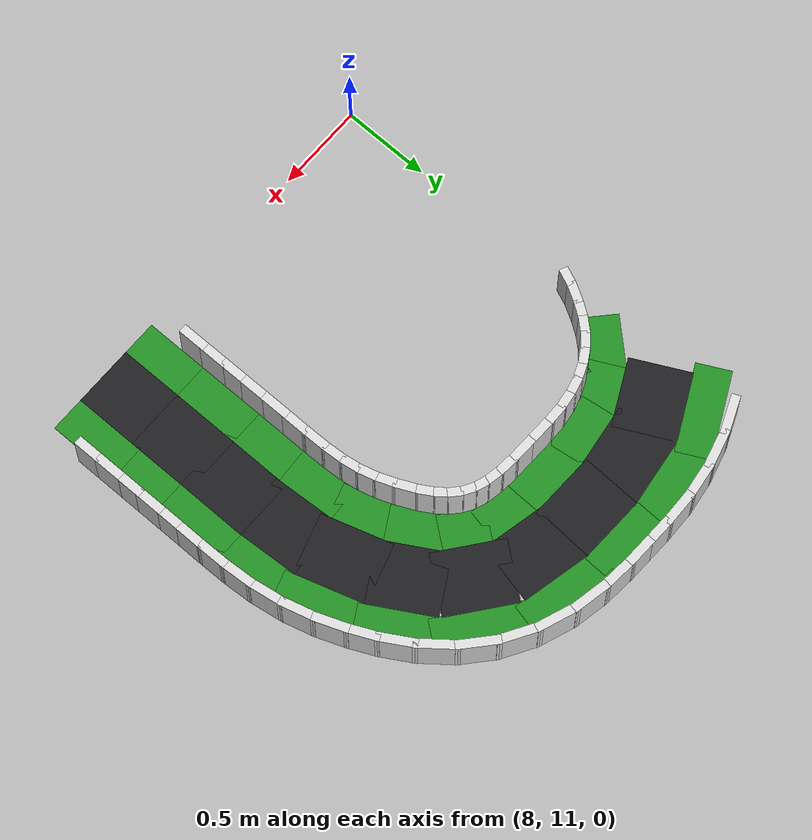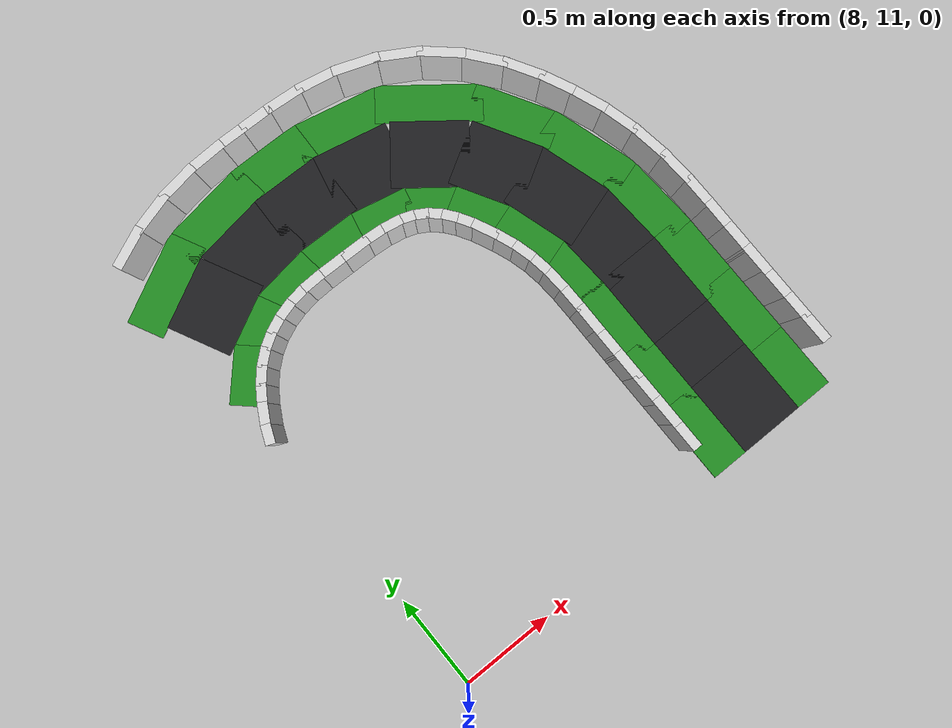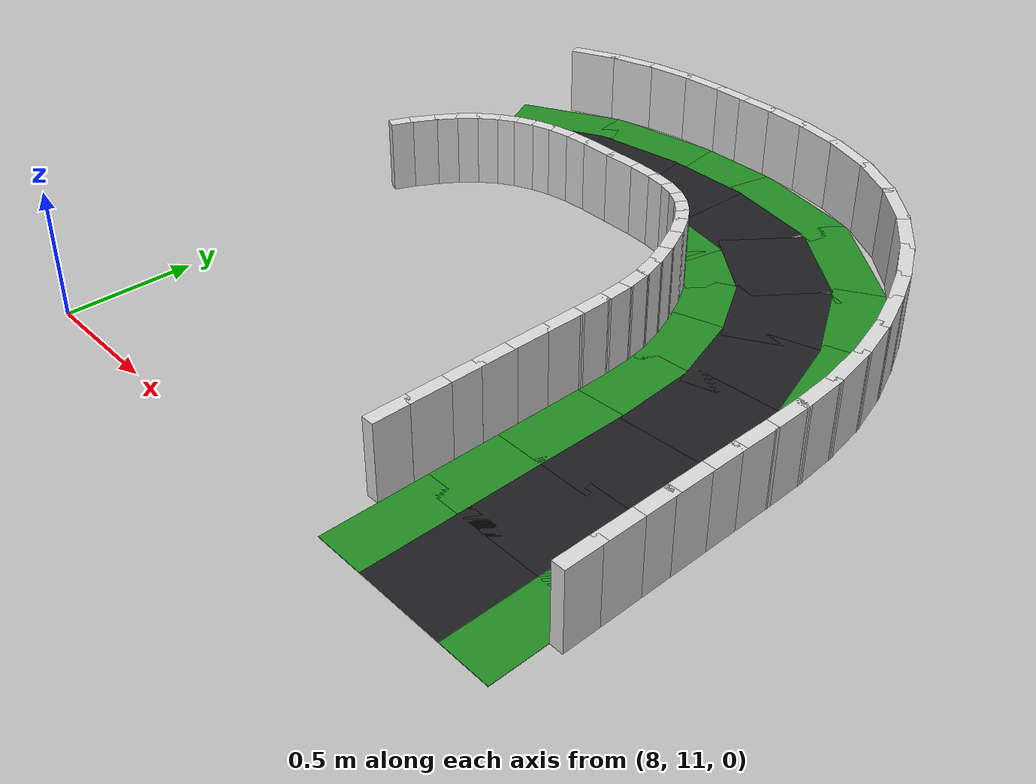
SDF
<sdf version="1.8">
 <world name="it_arena_track">
  <model name="it_arena_track_static">
   <static>true</static>
   <link name="surface_main_13">
    <pose>9.9514 11.2060 0.0015 0 0 1.57385</pose>
    <collision name="surface_main_13_col">
     <geometry><box><size>0.4140 0.3500 0.0030</size></box></geometry>
    </collision>
    <visual name="surface_main_13_vis">
     <geometry><box><size>0.4140 0.3500 0.0030</size></box></geometry>
     <material><ambient>0.12 0.12 0.13 1</ambient><diffuse>0.12 0.12 0.13 1</diffuse></material>
    </visual>
   </link>
   <link name="surface_main_14">
    <pose>9.9503 11.5559 0.0015 0 0 1.57397</pose>
    <collision name="surface_main_14_col">
     <geometry><box><size>0.3910 0.3500 0.0030</size></box></geometry>
    </collision>
    <visual name="surface_main_14_vis">
     <geometry><box><size>0.3910 0.3500 0.0030</size></box></geometry>
     <material><ambient>0.12 0.12 0.13 1</ambient><diffuse>0.12 0.12 0.13 1</diffuse></material>
    </visual>
   </link>
   <link name="surface_main_15">
    <pose>9.9498 11.9059 0.0015 0 0 1.57068</pose>
    <collision name="surface_main_15_col">
     <geometry><box><size>0.4140 0.3500 0.0030</size></box></geometry>
    </collision>
    <visual name="surface_main_15_vis">
     <geometry><box><size>0.4140 0.3500 0.0030</size></box></geometry>
     <material><ambient>0.12 0.12 0.13 1</ambient><diffuse>0.12 0.12 0.13 1</diffuse></material>
    </visual>
   </link>
   <link name="surface_main_16">
    <pose>9.9389 12.2553 0.0015 0 0 1.63489</pose>
    <collision name="surface_main_16_col">
     <geometry><box><size>0.3905 0.3500 0.0030</size></box></geometry>
    </collision>
    <visual name="surface_main_16_vis">
     <geometry><box><size>0.3905 0.3500 0.0030</size></box></geometry>
     <material><ambient>0.12 0.12 0.13 1</ambient><diffuse>0.12 0.12 0.13 1</diffuse></material>
    </visual>
   </link>
   <link name="surface_main_17">
    <pose>9.8749 12.5961 0.0015 0 0 1.87171</pose>
    <collision name="surface_main_17_col">
     <geometry><box><size>0.4127 0.3500 0.0030</size></box></geometry>
    </collision>
    <visual name="surface_main_17_vis">
     <geometry><box><size>0.4127 0.3500 0.0030</size></box></geometry>
     <material><ambient>0.12 0.12 0.13 1</ambient><diffuse>0.12 0.12 0.13 1</diffuse></material>
    </visual>
   </link>
   <link name="surface_main_18">
    <pose>9.7365 12.9139 0.0015 0 0 2.09781</pose>
    <collision name="surface_main_18_col">
     <geometry><box><size>0.3897 0.3500 0.0030</size></box></geometry>
    </collision>
    <visual name="surface_main_18_vis">
     <geometry><box><size>0.3897 0.3500 0.0030</size></box></geometry>
     <material><ambient>0.12 0.12 0.13 1</ambient><diffuse>0.12 0.12 0.13 1</diffuse></material>
    </visual>
   </link>
   <link name="surface_main_19">
    <pose>9.5103 13.1694 0.0015 0 0 2.48299</pose>
    <collision name="surface_main_19_col">
     <geometry><box><size>0.4099 0.3500 0.0030</size></box></geometry>
    </collision>
    <visual name="surface_main_19_vis">
     <geometry><box><size>0.4099 0.3500 0.0030</size></box></geometry>
     <material><ambient>0.12 0.12 0.13 1</ambient><diffuse>0.12 0.12 0.13 1</diffuse></material>
    </visual>
   </link>
   <link name="surface_main_20">
    <pose>9.1946 13.3170 0.0015 0 0 2.92453</pose>
    <collision name="surface_main_20_col">
     <geometry><box><size>0.4117 0.3500 0.0030</size></box></geometry>
    </collision>
    <visual name="surface_main_20_vis">
     <geometry><box><size>0.4117 0.3500 0.0030</size></box></geometry>
     <material><ambient>0.12 0.12 0.13 1</ambient><diffuse>0.12 0.12 0.13 1</diffuse></material>
    </visual>
   </link>
   <link name="surface_main_21">
    <pose>8.8499 13.3599 0.0015 0 0 3.11616</pose>
    <collision name="surface_main_21_col">
     <geometry><box><size>0.3909 0.3500 0.0030</size></box></geometry>
    </collision>
    <visual name="surface_main_21_vis">
     <geometry><box><size>0.3909 0.3500 0.0030</size></box></geometry>
     <material><ambient>0.12 0.12 0.13 1</ambient><diffuse>0.12 0.12 0.13 1</diffuse></material>
    </visual>
   </link>
   <link name="surface_main_22">
    <pose>8.5024 13.3397 0.0015 0 0 -3.00425</pose>
    <collision name="surface_main_22_col">
     <geometry><box><size>0.4123 0.3500 0.0030</size></box></geometry>
    </collision>
    <visual name="surface_main_22_vis">
     <geometry><box><size>0.4123 0.3500 0.0030</size></box></geometry>
     <material><ambient>0.12 0.12 0.13 1</ambient><diffuse>0.12 0.12 0.13 1</diffuse></material>
    </visual>
   </link>
   <link name="surface_main_23">
    <pose>8.1741 13.2386 0.0015 0 0 -2.67193</pose>
    <collision name="surface_main_23_col">
     <geometry><box><size>0.3889 0.3500 0.0030</size></box></geometry>
    </collision>
    <visual name="surface_main_23_vis">
     <geometry><box><size>0.3889 0.3500 0.0030</size></box></geometry>
     <material><ambient>0.12 0.12 0.13 1</ambient><diffuse>0.12 0.12 0.13 1</diffuse></material>
    </visual>
   </link>
   <link name="grass_main_left_13">
    <pose>9.6764 11.2052 0.0010 0 0 1.57385</pose>
    <collision name="grass_main_left_13_col">
     <geometry><box><size>0.4144 0.2000 0.0020</size></box></geometry>
    </collision>
    <visual name="grass_main_left_13_vis">
     <geometry><box><size>0.4144 0.2000 0.0020</size></box></geometry>
     <material><ambient>0.13 0.55 0.13 1</ambient><diffuse>0.13 0.55 0.13 1</diffuse></material>
    </visual>
   </link>
   <link name="grass_main_left_14">
    <pose>9.6753 11.5553 0.0010 0 0 1.57397</pose>
    <collision name="grass_main_left_14_col">
     <geometry><box><size>0.3908 0.2000 0.0020</size></box></geometry>
    </collision>
    <visual name="grass_main_left_14_vis">
     <geometry><box><size>0.3908 0.2000 0.0020</size></box></geometry>
     <material><ambient>0.13 0.55 0.13 1</ambient><diffuse>0.13 0.55 0.13 1</diffuse></material>
    </visual>
   </link>
   <link name="grass_main_left_15">
    <pose>9.6748 11.9050 0.0010 0 0 1.57068</pose>
    <collision name="grass_main_left_15_col">
     <geometry><box><size>0.4135 0.2000 0.0020</size></box></geometry>
    </collision>
    <visual name="grass_main_left_15_vis">
     <geometry><box><size>0.4135 0.2000 0.0020</size></box></geometry>
     <material><ambient>0.13 0.55 0.13 1</ambient><diffuse>0.13 0.55 0.13 1</diffuse></material>
    </visual>
   </link>
   <link name="grass_main_left_16">
    <pose>9.6658 12.2322 0.0010 0 0 1.63184</pose>
    <collision name="grass_main_left_16_col">
     <geometry><box><size>0.3396 0.2000 0.0020</size></box></geometry>
    </collision>
    <visual name="grass_main_left_16_vis">
     <geometry><box><size>0.3396 0.2000 0.0020</size></box></geometry>
     <material><ambient>0.13 0.55 0.13 1</ambient><diffuse>0.13 0.55 0.13 1</diffuse></material>
    </visual>
   </link>
   <link name="grass_main_left_17">
    <pose>9.6141 12.5166 0.0010 0 0 1.87299</pose>
    <collision name="grass_main_left_17_col">
     <geometry><box><size>0.3303 0.2000 0.0020</size></box></geometry>
    </collision>
    <visual name="grass_main_left_17_vis">
     <geometry><box><size>0.3303 0.2000 0.0020</size></box></geometry>
     <material><ambient>0.13 0.55 0.13 1</ambient><diffuse>0.13 0.55 0.13 1</diffuse></material>
    </visual>
   </link>
   <link name="grass_main_left_18">
    <pose>9.5041 12.7710 0.0010 0 0 2.09164</pose>
    <collision name="grass_main_left_18_col">
     <geometry><box><size>0.3109 0.2000 0.0020</size></box></geometry>
    </collision>
    <visual name="grass_main_left_18_vis">
     <geometry><box><size>0.3109 0.2000 0.0020</size></box></geometry>
     <material><ambient>0.13 0.55 0.13 1</ambient><diffuse>0.13 0.55 0.13 1</diffuse></material>
    </visual>
   </link>
   <link name="grass_main_left_19">
    <pose>9.3474 12.9577 0.0010 0 0 2.48149</pose>
    <collision name="grass_main_left_19_col">
     <geometry><box><size>0.2604 0.2000 0.0020</size></box></geometry>
    </collision>
    <visual name="grass_main_left_19_vis">
     <geometry><box><size>0.2604 0.2000 0.0020</size></box></geometry>
     <material><ambient>0.13 0.55 0.13 1</ambient><diffuse>0.13 0.55 0.13 1</diffuse></material>
    </visual>
   </link>
   <link name="grass_main_left_20">
    <pose>9.1301 13.0541 0.0010 0 0 2.93327</pose>
    <collision name="grass_main_left_20_col">
     <geometry><box><size>0.3006 0.2000 0.0020</size></box></geometry>
    </collision>
    <visual name="grass_main_left_20_vis">
     <geometry><box><size>0.3006 0.2000 0.0020</size></box></geometry>
     <material><ambient>0.13 0.55 0.13 1</ambient><diffuse>0.13 0.55 0.13 1</diffuse></material>
    </visual>
   </link>
   <link name="grass_main_left_21">
    <pose>8.8402 13.0852 0.0010 0 0 3.11664</pose>
    <collision name="grass_main_left_21_col">
     <geometry><box><size>0.3727 0.2000 0.0020</size></box></geometry>
    </collision>
    <visual name="grass_main_left_21_vis">
     <geometry><box><size>0.3727 0.2000 0.0020</size></box></geometry>
     <material><ambient>0.13 0.55 0.13 1</ambient><diffuse>0.13 0.55 0.13 1</diffuse></material>
    </visual>
   </link>
   <link name="grass_main_left_22">
    <pose>8.5419 13.0707 0.0010 0 0 -3.00677</pose>
    <collision name="grass_main_left_22_col">
     <geometry><box><size>0.3164 0.2000 0.0020</size></box></geometry>
    </collision>
    <visual name="grass_main_left_22_vis">
     <geometry><box><size>0.3164 0.2000 0.0020</size></box></geometry>
     <material><ambient>0.13 0.55 0.13 1</ambient><diffuse>0.13 0.55 0.13 1</diffuse></material>
    </visual>
   </link>
   <link name="grass_main_left_23">
    <pose>8.2984 12.9983 0.0010 0 0 -2.67504</pose>
    <collision name="grass_main_left_23_col">
     <geometry><box><size>0.2760 0.2000 0.0020</size></box></geometry>
    </collision>
    <visual name="grass_main_left_23_vis">
     <geometry><box><size>0.2760 0.2000 0.0020</size></box></geometry>
     <material><ambient>0.13 0.55 0.13 1</ambient><diffuse>0.13 0.55 0.13 1</diffuse></material>
    </visual>
   </link>
   <link name="grass_main_left_24">
    <pose>8.1018 12.8468 0.0010 0 0 -2.31321</pose>
    <collision name="grass_main_left_24_col">
     <geometry><box><size>0.3044 0.2000 0.0020</size></box></geometry>
    </collision>
    <visual name="grass_main_left_24_vis">
     <geometry><box><size>0.3044 0.2000 0.0020</size></box></geometry>
     <material><ambient>0.13 0.55 0.13 1</ambient><diffuse>0.13 0.55 0.13 1</diffuse></material>
    </visual>
   </link>
   <link name="grass_main_right_13">
    <pose>10.2264 11.2067 0.0010 0 0 1.57386</pose>
    <collision name="grass_main_right_13_col">
     <geometry><box><size>0.4135 0.2000 0.0020</size></box></geometry>
    </collision>
    <visual name="grass_main_right_13_vis">
     <geometry><box><size>0.4135 0.2000 0.0020</size></box></geometry>
     <material><ambient>0.13 0.55 0.13 1</ambient><diffuse>0.13 0.55 0.13 1</diffuse></material>
    </visual>
   </link>
   <link name="grass_main_right_14">
    <pose>10.2253 11.5565 0.0010 0 0 1.57397</pose>
    <collision name="grass_main_right_14_col">
     <geometry><box><size>0.3911 0.2000 0.0020</size></box></geometry>
    </collision>
    <visual name="grass_main_right_14_vis">
     <geometry><box><size>0.3911 0.2000 0.0020</size></box></geometry>
     <material><ambient>0.13 0.55 0.13 1</ambient><diffuse>0.13 0.55 0.13 1</diffuse></material>
    </visual>
   </link>
   <link name="grass_main_right_15">
    <pose>10.2248 11.9068 0.0010 0 0 1.57068</pose>
    <collision name="grass_main_right_15_col">
     <geometry><box><size>0.4144 0.2000 0.0020</size></box></geometry>
    </collision>
    <visual name="grass_main_right_15_vis">
     <geometry><box><size>0.4144 0.2000 0.0020</size></box></geometry>
     <material><ambient>0.13 0.55 0.13 1</ambient><diffuse>0.13 0.55 0.13 1</diffuse></material>
    </visual>
   </link>
   <link name="grass_main_right_16">
    <pose>10.2121 12.2784 0.0010 0 0 1.63725</pose>
    <collision name="grass_main_right_16_col">
     <geometry><box><size>0.4414 0.2000 0.0020</size></box></geometry>
    </collision>
    <visual name="grass_main_right_16_vis">
     <geometry><box><size>0.4414 0.2000 0.0020</size></box></geometry>
     <material><ambient>0.13 0.55 0.13 1</ambient><diffuse>0.13 0.55 0.13 1</diffuse></material>
    </visual>
   </link>
   <link name="grass_main_right_17">
    <pose>10.1357 12.6756 0.0010 0 0 1.87085</pose>
    <collision name="grass_main_right_17_col">
     <geometry><box><size>0.4951 0.2000 0.0020</size></box></geometry>
    </collision>
    <visual name="grass_main_right_17_vis">
     <geometry><box><size>0.4951 0.2000 0.0020</size></box></geometry>
     <material><ambient>0.13 0.55 0.13 1</ambient><diffuse>0.13 0.55 0.13 1</diffuse></material>
    </visual>
   </link>
   <link name="grass_main_right_18">
    <pose>9.9689 13.0568 0.0010 0 0 2.10190</pose>
    <collision name="grass_main_right_18_col">
     <geometry><box><size>0.4684 0.2000 0.0020</size></box></geometry>
    </collision>
    <visual name="grass_main_right_18_vis">
     <geometry><box><size>0.4684 0.2000 0.0020</size></box></geometry>
     <material><ambient>0.13 0.55 0.13 1</ambient><diffuse>0.13 0.55 0.13 1</diffuse></material>
    </visual>
   </link>
   <link name="grass_main_right_19">
    <pose>9.6733 13.3812 0.0010 0 0 2.48369</pose>
    <collision name="grass_main_right_19_col">
     <geometry><box><size>0.5594 0.2000 0.0020</size></box></geometry>
    </collision>
    <visual name="grass_main_right_19_vis">
     <geometry><box><size>0.5594 0.2000 0.0020</size></box></geometry>
     <material><ambient>0.13 0.55 0.13 1</ambient><diffuse>0.13 0.55 0.13 1</diffuse></material>
    </visual>
   </link>
   <link name="grass_main_right_20">
    <pose>9.2592 13.5799 0.0010 0 0 2.91950</pose>
    <collision name="grass_main_right_20_col">
     <geometry><box><size>0.5228 0.2000 0.0020</size></box></geometry>
    </collision>
    <visual name="grass_main_right_20_vis">
     <geometry><box><size>0.5228 0.2000 0.0020</size></box></geometry>
     <material><ambient>0.13 0.55 0.13 1</ambient><diffuse>0.13 0.55 0.13 1</diffuse></material>
    </visual>
   </link>
   <link name="grass_main_right_21">
    <pose>8.8596 13.6346 0.0010 0 0 3.11572</pose>
    <collision name="grass_main_right_21_col">
     <geometry><box><size>0.4091 0.2000 0.0020</size></box></geometry>
    </collision>
    <visual name="grass_main_right_21_vis">
     <geometry><box><size>0.4091 0.2000 0.0020</size></box></geometry>
     <material><ambient>0.13 0.55 0.13 1</ambient><diffuse>0.13 0.55 0.13 1</diffuse></material>
    </visual>
   </link>
   <link name="grass_main_right_22">
    <pose>8.4630 13.6086 0.0010 0 0 -3.00268</pose>
    <collision name="grass_main_right_22_col">
     <geometry><box><size>0.5081 0.2000 0.0020</size></box></geometry>
    </collision>
    <visual name="grass_main_right_22_vis">
     <geometry><box><size>0.5081 0.2000 0.0020</size></box></geometry>
     <material><ambient>0.13 0.55 0.13 1</ambient><diffuse>0.13 0.55 0.13 1</diffuse></material>
    </visual>
   </link>
   <link name="grass_main_right_23">
    <pose>8.0498 13.4790 0.0010 0 0 -2.67022</pose>
    <collision name="grass_main_right_23_col">
     <geometry><box><size>0.5018 0.2000 0.0020</size></box></geometry>
    </collision>
    <visual name="grass_main_right_23_vis">
     <geometry><box><size>0.5018 0.2000 0.0020</size></box></geometry>
     <material><ambient>0.13 0.55 0.13 1</ambient><diffuse>0.13 0.55 0.13 1</diffuse></material>
    </visual>
   </link>
   <link name="walls_main_left_34">
    <pose>9.5511 11.2946 0.1500 0 0 1.57408</pose>
    <collision name="walls_main_left_34_col">
     <geometry><box><size>0.1612 0.0500 0.3000</size></box></geometry>
     <surface><friction><ode><mu>0.8</mu><mu2>0.8</mu2></ode></friction></surface>
    </collision>
    <visual name="walls_main_left_34_vis">
     <geometry><box><size>0.1612 0.0500 0.3000</size></box></geometry>
     <material><ambient>0.85 0.85 0.85 1</ambient><diffuse>0.85 0.85 0.85 1</diffuse></material>
    </visual>
   </link>
   <link name="walls_main_left_35">
    <pose>9.5507 11.4346 0.1500 0 0 1.57408</pose>
    <collision name="walls_main_left_35_col">
     <geometry><box><size>0.1608 0.0500 0.3000</size></box></geometry>
     <surface><friction><ode><mu>0.8</mu><mu2>0.8</mu2></ode></friction></surface>
    </collision>
    <visual name="walls_main_left_35_vis">
     <geometry><box><size>0.1608 0.0500 0.3000</size></box></geometry>
     <material><ambient>0.85 0.85 0.85 1</ambient><diffuse>0.85 0.85 0.85 1</diffuse></material>
    </visual>
   </link>
   <link name="walls_main_left_36">
    <pose>9.5502 11.5748 0.1500 0 0 1.57366</pose>
    <collision name="walls_main_left_36_col">
     <geometry><box><size>0.1617 0.0500 0.3000</size></box></geometry>
     <surface><friction><ode><mu>0.8</mu><mu2>0.8</mu2></ode></friction></surface>
    </collision>
    <visual name="walls_main_left_36_vis">
     <geometry><box><size>0.1617 0.0500 0.3000</size></box></geometry>
     <material><ambient>0.85 0.85 0.85 1</ambient><diffuse>0.85 0.85 0.85 1</diffuse></material>
    </visual>
   </link>
   <link name="walls_main_left_37">
    <pose>9.5498 11.7147 0.1500 0 0 1.57379</pose>
    <collision name="walls_main_left_37_col">
     <geometry><box><size>0.1601 0.0500 0.3000</size></box></geometry>
     <surface><friction><ode><mu>0.8</mu><mu2>0.8</mu2></ode></friction></surface>
    </collision>
    <visual name="walls_main_left_37_vis">
     <geometry><box><size>0.1601 0.0500 0.3000</size></box></geometry>
     <material><ambient>0.85 0.85 0.85 1</ambient><diffuse>0.85 0.85 0.85 1</diffuse></material>
    </visual>
   </link>
   <link name="walls_main_left_38">
    <pose>9.5495 11.8557 0.1500 0 0 1.57210</pose>
    <collision name="walls_main_left_38_col">
     <geometry><box><size>0.1642 0.0500 0.3000</size></box></geometry>
     <surface><friction><ode><mu>0.8</mu><mu2>0.8</mu2></ode></friction></surface>
    </collision>
    <visual name="walls_main_left_38_vis">
     <geometry><box><size>0.1642 0.0500 0.3000</size></box></geometry>
     <material><ambient>0.85 0.85 0.85 1</ambient><diffuse>0.85 0.85 0.85 1</diffuse></material>
    </visual>
   </link>
   <link name="walls_main_left_39">
    <pose>9.5497 11.9963 0.1500 0 0 1.56748</pose>
    <collision name="walls_main_left_39_col">
     <geometry><box><size>0.1592 0.0500 0.3000</size></box></geometry>
     <surface><friction><ode><mu>0.8</mu><mu2>0.8</mu2></ode></friction></surface>
    </collision>
    <visual name="walls_main_left_39_vis">
     <geometry><box><size>0.1592 0.0500 0.3000</size></box></geometry>
     <material><ambient>0.85 0.85 0.85 1</ambient><diffuse>0.85 0.85 0.85 1</diffuse></material>
    </visual>
   </link>
   <link name="walls_main_left_40">
    <pose>9.5491 12.1291 0.1500 0 0 1.58406</pose>
    <collision name="walls_main_left_40_col">
     <geometry><box><size>0.1463 0.0500 0.3000</size></box></geometry>
     <surface><friction><ode><mu>0.8</mu><mu2>0.8</mu2></ode></friction></surface>
    </collision>
    <visual name="walls_main_left_40_vis">
     <geometry><box><size>0.1463 0.0500 0.3000</size></box></geometry>
     <material><ambient>0.85 0.85 0.85 1</ambient><diffuse>0.85 0.85 0.85 1</diffuse></material>
    </visual>
   </link>
   <link name="walls_main_left_41">
    <pose>9.5445 12.2487 0.1500 0 0 1.63696</pose>
    <collision name="walls_main_left_41_col">
     <geometry><box><size>0.1290 0.0500 0.3000</size></box></geometry>
     <surface><friction><ode><mu>0.8</mu><mu2>0.8</mu2></ode></friction></surface>
    </collision>
    <visual name="walls_main_left_41_vis">
     <geometry><box><size>0.1290 0.0500 0.3000</size></box></geometry>
     <material><ambient>0.85 0.85 0.85 1</ambient><diffuse>0.85 0.85 0.85 1</diffuse></material>
    </visual>
   </link>
   <link name="walls_main_left_42">
    <pose>9.5334 12.3518 0.1500 0 0 1.72670</pose>
    <collision name="walls_main_left_42_col">
     <geometry><box><size>0.1099 0.0500 0.3000</size></box></geometry>
     <surface><friction><ode><mu>0.8</mu><mu2>0.8</mu2></ode></friction></surface>
    </collision>
    <visual name="walls_main_left_42_vis">
     <geometry><box><size>0.1099 0.0500 0.3000</size></box></geometry>
     <material><ambient>0.85 0.85 0.85 1</ambient><diffuse>0.85 0.85 0.85 1</diffuse></material>
    </visual>
   </link>
   <link name="walls_main_left_43">
    <pose>9.5134 12.4456 0.1500 0 0 1.83484</pose>
    <collision name="walls_main_left_43_col">
     <geometry><box><size>0.1109 0.0500 0.3000</size></box></geometry>
     <surface><friction><ode><mu>0.8</mu><mu2>0.8</mu2></ode></friction></surface>
    </collision>
    <visual name="walls_main_left_43_vis">
     <geometry><box><size>0.1109 0.0500 0.3000</size></box></geometry>
     <material><ambient>0.85 0.85 0.85 1</ambient><diffuse>0.85 0.85 0.85 1</diffuse></material>
    </visual>
   </link>
   <link name="walls_main_left_44">
    <pose>9.4821 12.5406 0.1500 0 0 1.93844</pose>
    <collision name="walls_main_left_44_col">
     <geometry><box><size>0.1195 0.0500 0.3000</size></box></geometry>
     <surface><friction><ode><mu>0.8</mu><mu2>0.8</mu2></ode></friction></surface>
    </collision>
    <visual name="walls_main_left_44_vis">
     <geometry><box><size>0.1195 0.0500 0.3000</size></box></geometry>
     <material><ambient>0.85 0.85 0.85 1</ambient><diffuse>0.85 0.85 0.85 1</diffuse></material>
    </visual>
   </link>
   <link name="walls_main_left_45">
    <pose>9.4383 12.6427 0.1500 0 0 2.00910</pose>
    <collision name="walls_main_left_45_col">
     <geometry><box><size>0.1363 0.0500 0.3000</size></box></geometry>
     <surface><friction><ode><mu>0.8</mu><mu2>0.8</mu2></ode></friction></surface>
    </collision>
    <visual name="walls_main_left_45_vis">
     <geometry><box><size>0.1363 0.0500 0.3000</size></box></geometry>
     <material><ambient>0.85 0.85 0.85 1</ambient><diffuse>0.85 0.85 0.85 1</diffuse></material>
    </visual>
   </link>
   <link name="walls_main_left_46">
    <pose>9.3905 12.7343 0.1500 0 0 2.11041</pose>
    <collision name="walls_main_left_46_col">
     <geometry><box><size>0.1016 0.0500 0.3000</size></box></geometry>
     <surface><friction><ode><mu>0.8</mu><mu2>0.8</mu2></ode></friction></surface>
    </collision>
    <visual name="walls_main_left_46_vis">
     <geometry><box><size>0.1016 0.0500 0.3000</size></box></geometry>
     <material><ambient>0.85 0.85 0.85 1</ambient><diffuse>0.85 0.85 0.85 1</diffuse></material>
    </visual>
   </link>
   <link name="walls_main_left_47">
    <pose>9.3467 12.7993 0.1500 0 0 2.23107</pose>
    <collision name="walls_main_left_47_col">
     <geometry><box><size>0.0791 0.0500 0.3000</size></box></geometry>
     <surface><friction><ode><mu>0.8</mu><mu2>0.8</mu2></ode></friction></surface>
    </collision>
    <visual name="walls_main_left_47_vis">
     <geometry><box><size>0.0791 0.0500 0.3000</size></box></geometry>
     <material><ambient>0.85 0.85 0.85 1</ambient><diffuse>0.85 0.85 0.85 1</diffuse></material>
    </visual>
   </link>
   <link name="walls_main_left_48">
    <pose>9.2990 12.8510 0.1500 0 0 2.39840</pose>
    <collision name="walls_main_left_48_col">
     <geometry><box><size>0.0831 0.0500 0.3000</size></box></geometry>
     <surface><friction><ode><mu>0.8</mu><mu2>0.8</mu2></ode></friction></surface>
    </collision>
    <visual name="walls_main_left_48_vis">
     <geometry><box><size>0.0831 0.0500 0.3000</size></box></geometry>
     <material><ambient>0.85 0.85 0.85 1</ambient><diffuse>0.85 0.85 0.85 1</diffuse></material>
    </visual>
   </link>
   <link name="walls_main_left_49">
    <pose>9.2433 12.8926 0.1500 0 0 2.60569</pose>
    <collision name="walls_main_left_49_col">
     <geometry><box><size>0.0776 0.0500 0.3000</size></box></geometry>
     <surface><friction><ode><mu>0.8</mu><mu2>0.8</mu2></ode></friction></surface>
    </collision>
    <visual name="walls_main_left_49_vis">
     <geometry><box><size>0.0776 0.0500 0.3000</size></box></geometry>
     <material><ambient>0.85 0.85 0.85 1</ambient><diffuse>0.85 0.85 0.85 1</diffuse></material>
    </visual>
   </link>
   <link name="walls_main_left_50">
    <pose>9.1826 12.9214 0.1500 0 0 2.79433</pose>
    <collision name="walls_main_left_50_col">
     <geometry><box><size>0.0777 0.0500 0.3000</size></box></geometry>
     <surface><friction><ode><mu>0.8</mu><mu2>0.8</mu2></ode></friction></surface>
    </collision>
    <visual name="walls_main_left_50_vis">
     <geometry><box><size>0.0777 0.0500 0.3000</size></box></geometry>
     <material><ambient>0.85 0.85 0.85 1</ambient><diffuse>0.85 0.85 0.85 1</diffuse></material>
    </visual>
   </link>
   <link name="walls_main_left_51">
    <pose>9.1079 12.9412 0.1500 0 0 2.95026</pose>
    <collision name="walls_main_left_51_col">
     <geometry><box><size>0.1005 0.0500 0.3000</size></box></geometry>
     <surface><friction><ode><mu>0.8</mu><mu2>0.8</mu2></ode></friction></surface>
    </collision>
    <visual name="walls_main_left_51_vis">
     <geometry><box><size>0.1005 0.0500 0.3000</size></box></geometry>
     <material><ambient>0.85 0.85 0.85 1</ambient><diffuse>0.85 0.85 0.85 1</diffuse></material>
    </visual>
   </link>
   <link name="walls_main_left_52">
    <pose>9.0143 12.9537 0.1500 0 0 3.05771</pose>
    <collision name="walls_main_left_52_col">
     <geometry><box><size>0.1169 0.0500 0.3000</size></box></geometry>
     <surface><friction><ode><mu>0.8</mu><mu2>0.8</mu2></ode></friction></surface>
    </collision>
    <visual name="walls_main_left_52_vis">
     <geometry><box><size>0.1169 0.0500 0.3000</size></box></geometry>
     <material><ambient>0.85 0.85 0.85 1</ambient><diffuse>0.85 0.85 0.85 1</diffuse></material>
    </visual>
   </link>
   <link name="walls_main_left_53">
    <pose>8.8990 12.9595 0.1500 0 0 3.11861</pose>
    <collision name="walls_main_left_53_col">
     <geometry><box><size>0.1488 0.0500 0.3000</size></box></geometry>
     <surface><friction><ode><mu>0.8</mu><mu2>0.8</mu2></ode></friction></surface>
    </collision>
    <visual name="walls_main_left_53_vis">
     <geometry><box><size>0.1488 0.0500 0.3000</size></box></geometry>
     <material><ambient>0.85 0.85 0.85 1</ambient><diffuse>0.85 0.85 0.85 1</diffuse></material>
    </visual>
   </link>
   <link name="walls_main_left_54">
    <pose>8.7637 12.9626 0.1500 0 0 3.11917</pose>
    <collision name="walls_main_left_54_col">
     <geometry><box><size>0.1626 0.0500 0.3000</size></box></geometry>
     <surface><friction><ode><mu>0.8</mu><mu2>0.8</mu2></ode></friction></surface>
    </collision>
    <visual name="walls_main_left_54_vis">
     <geometry><box><size>0.1626 0.0500 0.3000</size></box></geometry>
     <material><ambient>0.85 0.85 0.85 1</ambient><diffuse>0.85 0.85 0.85 1</diffuse></material>
    </visual>
   </link>
   <link name="walls_main_left_55">
    <pose>8.6430 12.9627 0.1500 0 0 -3.11253</pose>
    <collision name="walls_main_left_55_col">
     <geometry><box><size>0.1150 0.0500 0.3000</size></box></geometry>
     <surface><friction><ode><mu>0.8</mu><mu2>0.8</mu2></ode></friction></surface>
    </collision>
    <visual name="walls_main_left_55_vis">
     <geometry><box><size>0.1150 0.0500 0.3000</size></box></geometry>
     <material><ambient>0.85 0.85 0.85 1</ambient><diffuse>0.85 0.85 0.85 1</diffuse></material>
    </visual>
   </link>
   <link name="walls_main_left_56">
    <pose>8.5466 12.9544 0.1500 0 0 -2.99639</pose>
    <collision name="walls_main_left_56_col">
     <geometry><box><size>0.1080 0.0500 0.3000</size></box></geometry>
     <surface><friction><ode><mu>0.8</mu><mu2>0.8</mu2></ode></friction></surface>
    </collision>
    <visual name="walls_main_left_56_vis">
     <geometry><box><size>0.1080 0.0500 0.3000</size></box></geometry>
     <material><ambient>0.85 0.85 0.85 1</ambient><diffuse>0.85 0.85 0.85 1</diffuse></material>
    </visual>
   </link>
   <link name="walls_main_left_57">
    <pose>8.4610 12.9368 0.1500 0 0 -2.87162</pose>
    <collision name="walls_main_left_57_col">
     <geometry><box><size>0.0934 0.0500 0.3000</size></box></geometry>
     <surface><friction><ode><mu>0.8</mu><mu2>0.8</mu2></ode></friction></surface>
    </collision>
    <visual name="walls_main_left_57_vis">
     <geometry><box><size>0.0934 0.0500 0.3000</size></box></geometry>
     <material><ambient>0.85 0.85 0.85 1</ambient><diffuse>0.85 0.85 0.85 1</diffuse></material>
    </visual>
   </link>
   <link name="walls_main_left_58">
    <pose>8.3819 12.9089 0.1500 0 0 -2.73832</pose>
    <collision name="walls_main_left_58_col">
     <geometry><box><size>0.0999 0.0500 0.3000</size></box></geometry>
     <surface><friction><ode><mu>0.8</mu><mu2>0.8</mu2></ode></friction></surface>
    </collision>
    <visual name="walls_main_left_58_vis">
     <geometry><box><size>0.0999 0.0500 0.3000</size></box></geometry>
     <material><ambient>0.85 0.85 0.85 1</ambient><diffuse>0.85 0.85 0.85 1</diffuse></material>
    </visual>
   </link>
   <link name="walls_main_left_59">
    <pose>8.3084 12.8715 0.1500 0 0 -2.59520</pose>
    <collision name="walls_main_left_59_col">
     <geometry><box><size>0.0903 0.0500 0.3000</size></box></geometry>
     <surface><friction><ode><mu>0.8</mu><mu2>0.8</mu2></ode></friction></surface>
    </collision>
    <visual name="walls_main_left_59_vis">
     <geometry><box><size>0.0903 0.0500 0.3000</size></box></geometry>
     <material><ambient>0.85 0.85 0.85 1</ambient><diffuse>0.85 0.85 0.85 1</diffuse></material>
    </visual>
   </link>
   <link name="walls_main_left_60">
    <pose>8.2417 12.8232 0.1500 0 0 -2.44328</pose>
    <collision name="walls_main_left_60_col">
     <geometry><box><size>0.0997 0.0500 0.3000</size></box></geometry>
     <surface><friction><ode><mu>0.8</mu><mu2>0.8</mu2></ode></friction></surface>
    </collision>
    <visual name="walls_main_left_60_vis">
     <geometry><box><size>0.0997 0.0500 0.3000</size></box></geometry>
     <material><ambient>0.85 0.85 0.85 1</ambient><diffuse>0.85 0.85 0.85 1</diffuse></material>
    </visual>
   </link>
   <link name="walls_main_left_61">
    <pose>8.1801 12.7629 0.1500 0 0 -2.29056</pose>
    <collision name="walls_main_left_61_col">
     <geometry><box><size>0.0993 0.0500 0.3000</size></box></geometry>
     <surface><friction><ode><mu>0.8</mu><mu2>0.8</mu2></ode></friction></surface>
    </collision>
    <visual name="walls_main_left_61_vis">
     <geometry><box><size>0.0993 0.0500 0.3000</size></box></geometry>
     <material><ambient>0.85 0.85 0.85 1</ambient><diffuse>0.85 0.85 0.85 1</diffuse></material>
    </visual>
   </link>
   <link name="walls_main_left_62">
    <pose>8.1269 12.6938 0.1500 0 0 -2.16478</pose>
    <collision name="walls_main_left_62_col">
     <geometry><box><size>0.1017 0.0500 0.3000</size></box></geometry>
     <surface><friction><ode><mu>0.8</mu><mu2>0.8</mu2></ode></friction></surface>
    </collision>
    <visual name="walls_main_left_62_vis">
     <geometry><box><size>0.1017 0.0500 0.3000</size></box></geometry>
     <material><ambient>0.85 0.85 0.85 1</ambient><diffuse>0.85 0.85 0.85 1</diffuse></material>
    </visual>
   </link>
   <link name="walls_main_left_63">
    <pose>8.0766 12.6118 0.1500 0 0 -2.08324</pose>
    <collision name="walls_main_left_63_col">
     <geometry><box><size>0.1197 0.0500 0.3000</size></box></geometry>
     <surface><friction><ode><mu>0.8</mu><mu2>0.8</mu2></ode></friction></surface>
    </collision>
    <visual name="walls_main_left_63_vis">
     <geometry><box><size>0.1197 0.0500 0.3000</size></box></geometry>
     <material><ambient>0.85 0.85 0.85 1</ambient><diffuse>0.85 0.85 0.85 1</diffuse></material>
    </visual>
   </link>
   <link name="walls_main_left_64">
    <pose>8.0345 12.5267 0.1500 0 0 -1.96599</pose>
    <collision name="walls_main_left_64_col">
     <geometry><box><size>0.0990 0.0500 0.3000</size></box></geometry>
     <surface><friction><ode><mu>0.8</mu><mu2>0.8</mu2></ode></friction></surface>
    </collision>
    <visual name="walls_main_left_64_vis">
     <geometry><box><size>0.0990 0.0500 0.3000</size></box></geometry>
     <material><ambient>0.85 0.85 0.85 1</ambient><diffuse>0.85 0.85 0.85 1</diffuse></material>
    </visual>
   </link>
   <link name="walls_main_right_34">
    <pose>10.3511 11.2972 0.1500 0 0 1.57408</pose>
    <collision name="walls_main_right_34_col">
     <geometry><box><size>0.1608 0.0500 0.3000</size></box></geometry>
     <surface><friction><ode><mu>0.8</mu><mu2>0.8</mu2></ode></friction></surface>
    </collision>
    <visual name="walls_main_right_34_vis">
     <geometry><box><size>0.1608 0.0500 0.3000</size></box></geometry>
     <material><ambient>0.85 0.85 0.85 1</ambient><diffuse>0.85 0.85 0.85 1</diffuse></material>
    </visual>
   </link>
   <link name="walls_main_right_35">
    <pose>10.3507 11.4372 0.1500 0 0 1.57408</pose>
    <collision name="walls_main_right_35_col">
     <geometry><box><size>0.1612 0.0500 0.3000</size></box></geometry>
     <surface><friction><ode><mu>0.8</mu><mu2>0.8</mu2></ode></friction></surface>
    </collision>
    <visual name="walls_main_right_35_vis">
     <geometry><box><size>0.1612 0.0500 0.3000</size></box></geometry>
     <material><ambient>0.85 0.85 0.85 1</ambient><diffuse>0.85 0.85 0.85 1</diffuse></material>
    </visual>
   </link>
   <link name="walls_main_right_36">
    <pose>10.3502 11.5770 0.1500 0 0 1.57366</pose>
    <collision name="walls_main_right_36_col">
     <geometry><box><size>0.1603 0.0500 0.3000</size></box></geometry>
     <surface><friction><ode><mu>0.8</mu><mu2>0.8</mu2></ode></friction></surface>
    </collision>
    <visual name="walls_main_right_36_vis">
     <geometry><box><size>0.1603 0.0500 0.3000</size></box></geometry>
     <material><ambient>0.85 0.85 0.85 1</ambient><diffuse>0.85 0.85 0.85 1</diffuse></material>
    </visual>
   </link>
   <link name="walls_main_right_37">
    <pose>10.3498 11.7171 0.1500 0 0 1.57379</pose>
    <collision name="walls_main_right_37_col">
     <geometry><box><size>0.1619 0.0500 0.3000</size></box></geometry>
     <surface><friction><ode><mu>0.8</mu><mu2>0.8</mu2></ode></friction></surface>
    </collision>
    <visual name="walls_main_right_37_vis">
     <geometry><box><size>0.1619 0.0500 0.3000</size></box></geometry>
     <material><ambient>0.85 0.85 0.85 1</ambient><diffuse>0.85 0.85 0.85 1</diffuse></material>
    </visual>
   </link>
   <link name="walls_main_right_38">
    <pose>10.3495 11.8561 0.1500 0 0 1.57213</pose>
    <collision name="walls_main_right_38_col">
     <geometry><box><size>0.1578 0.0500 0.3000</size></box></geometry>
     <surface><friction><ode><mu>0.8</mu><mu2>0.8</mu2></ode></friction></surface>
    </collision>
    <visual name="walls_main_right_38_vis">
     <geometry><box><size>0.1578 0.0500 0.3000</size></box></geometry>
     <material><ambient>0.85 0.85 0.85 1</ambient><diffuse>0.85 0.85 0.85 1</diffuse></material>
    </visual>
   </link>
   <link name="walls_main_right_39">
    <pose>10.3497 11.9955 0.1500 0 0 1.56753</pose>
    <collision name="walls_main_right_39_col">
     <geometry><box><size>0.1627 0.0500 0.3000</size></box></geometry>
     <surface><friction><ode><mu>0.8</mu><mu2>0.8</mu2></ode></friction></surface>
    </collision>
    <visual name="walls_main_right_39_vis">
     <geometry><box><size>0.1627 0.0500 0.3000</size></box></geometry>
     <material><ambient>0.85 0.85 0.85 1</ambient><diffuse>0.85 0.85 0.85 1</diffuse></material>
    </visual>
   </link>
   <link name="walls_main_right_40">
    <pose>10.3488 12.1426 0.1500 0 0 1.58465</pose>
    <collision name="walls_main_right_40_col">
     <geometry><box><size>0.1756 0.0500 0.3000</size></box></geometry>
     <surface><friction><ode><mu>0.8</mu><mu2>0.8</mu2></ode></friction></surface>
    </collision>
    <visual name="walls_main_right_40_vis">
     <geometry><box><size>0.1756 0.0500 0.3000</size></box></geometry>
     <material><ambient>0.85 0.85 0.85 1</ambient><diffuse>0.85 0.85 0.85 1</diffuse></material>
    </visual>
   </link>
   <link name="walls_main_right_41">
    <pose>10.3422 12.3026 0.1500 0 0 1.63740</pose>
    <collision name="walls_main_right_41_col">
     <geometry><box><size>0.1929 0.0500 0.3000</size></box></geometry>
     <surface><friction><ode><mu>0.8</mu><mu2>0.8</mu2></ode></friction></surface>
    </collision>
    <visual name="walls_main_right_41_vis">
     <geometry><box><size>0.1929 0.0500 0.3000</size></box></geometry>
     <material><ambient>0.85 0.85 0.85 1</ambient><diffuse>0.85 0.85 0.85 1</diffuse></material>
    </visual>
   </link>
   <link name="walls_main_right_42">
    <pose>10.3222 12.4773 0.1500 0 0 1.72758</pose>
    <collision name="walls_main_right_42_col">
     <geometry><box><size>0.2119 0.0500 0.3000</size></box></geometry>
     <surface><friction><ode><mu>0.8</mu><mu2>0.8</mu2></ode></friction></surface>
    </collision>
    <visual name="walls_main_right_42_vis">
     <geometry><box><size>0.2119 0.0500 0.3000</size></box></geometry>
     <material><ambient>0.85 0.85 0.85 1</ambient><diffuse>0.85 0.85 0.85 1</diffuse></material>
    </visual>
   </link>
   <link name="walls_main_right_43">
    <pose>10.2838 12.6568 0.1500 0 0 1.83652</pose>
    <collision name="walls_main_right_43_col">
     <geometry><box><size>0.2109 0.0500 0.3000</size></box></geometry>
     <surface><friction><ode><mu>0.8</mu><mu2>0.8</mu2></ode></friction></surface>
    </collision>
    <visual name="walls_main_right_43_vis">
     <geometry><box><size>0.2109 0.0500 0.3000</size></box></geometry>
     <material><ambient>0.85 0.85 0.85 1</ambient><diffuse>0.85 0.85 0.85 1</diffuse></material>
    </visual>
   </link>
   <link name="walls_main_right_44">
    <pose>10.2281 12.8274 0.1500 0 0 1.93820</pose>
    <collision name="walls_main_right_44_col">
     <geometry><box><size>0.2024 0.0500 0.3000</size></box></geometry>
     <surface><friction><ode><mu>0.8</mu><mu2>0.8</mu2></ode></friction></surface>
    </collision>
    <visual name="walls_main_right_44_vis">
     <geometry><box><size>0.2024 0.0500 0.3000</size></box></geometry>
     <material><ambient>0.85 0.85 0.85 1</ambient><diffuse>0.85 0.85 0.85 1</diffuse></material>
    </visual>
   </link>
   <link name="walls_main_right_45">
    <pose>10.1622 12.9826 0.1500 0 0 2.00927</pose>
    <collision name="walls_main_right_45_col">
     <geometry><box><size>0.1856 0.0500 0.3000</size></box></geometry>
     <surface><friction><ode><mu>0.8</mu><mu2>0.8</mu2></ode></friction></surface>
    </collision>
    <visual name="walls_main_right_45_vis">
     <geometry><box><size>0.1856 0.0500 0.3000</size></box></geometry>
     <material><ambient>0.85 0.85 0.85 1</ambient><diffuse>0.85 0.85 0.85 1</diffuse></material>
    </visual>
   </link>
   <link name="walls_main_right_46">
    <pose>10.0792 13.1380 0.1500 0 0 2.10534</pose>
    <collision name="walls_main_right_46_col">
     <geometry><box><size>0.2201 0.0500 0.3000</size></box></geometry>
     <surface><friction><ode><mu>0.8</mu><mu2>0.8</mu2></ode></friction></surface>
    </collision>
    <visual name="walls_main_right_46_vis">
     <geometry><box><size>0.2201 0.0500 0.3000</size></box></geometry>
     <material><ambient>0.85 0.85 0.85 1</ambient><diffuse>0.85 0.85 0.85 1</diffuse></material>
    </visual>
   </link>
   <link name="walls_main_right_47">
    <pose>9.9645 13.3026 0.1500 0 0 2.24673</pose>
    <collision name="walls_main_right_47_col">
     <geometry><box><size>0.2424 0.0500 0.3000</size></box></geometry>
     <surface><friction><ode><mu>0.8</mu><mu2>0.8</mu2></ode></friction></surface>
    </collision>
    <visual name="walls_main_right_47_vis">
     <geometry><box><size>0.2424 0.0500 0.3000</size></box></geometry>
     <material><ambient>0.85 0.85 0.85 1</ambient><diffuse>0.85 0.85 0.85 1</diffuse></material>
    </visual>
   </link>
   <link name="walls_main_right_48">
    <pose>9.8209 13.4535 0.1500 0 0 2.41754</pose>
    <collision name="walls_main_right_48_col">
     <geometry><box><size>0.2385 0.0500 0.3000</size></box></geometry>
     <surface><friction><ode><mu>0.8</mu><mu2>0.8</mu2></ode></friction></surface>
    </collision>
    <visual name="walls_main_right_48_vis">
     <geometry><box><size>0.2385 0.0500 0.3000</size></box></geometry>
     <material><ambient>0.85 0.85 0.85 1</ambient><diffuse>0.85 0.85 0.85 1</diffuse></material>
    </visual>
   </link>
   <link name="walls_main_right_49">
    <pose>9.6521 13.5765 0.1500 0 0 2.60375</pose>
    <collision name="walls_main_right_49_col">
     <geometry><box><size>0.2439 0.0500 0.3000</size></box></geometry>
     <surface><friction><ode><mu>0.8</mu><mu2>0.8</mu2></ode></friction></surface>
    </collision>
    <visual name="walls_main_right_49_vis">
     <geometry><box><size>0.2439 0.0500 0.3000</size></box></geometry>
     <material><ambient>0.85 0.85 0.85 1</ambient><diffuse>0.85 0.85 0.85 1</diffuse></material>
    </visual>
   </link>
   <link name="walls_main_right_50">
    <pose>9.4616 13.6676 0.1500 0 0 2.78711</pose>
    <collision name="walls_main_right_50_col">
     <geometry><box><size>0.2438 0.0500 0.3000</size></box></geometry>
     <surface><friction><ode><mu>0.8</mu><mu2>0.8</mu2></ode></friction></surface>
    </collision>
    <visual name="walls_main_right_50_vis">
     <geometry><box><size>0.2438 0.0500 0.3000</size></box></geometry>
     <material><ambient>0.85 0.85 0.85 1</ambient><diffuse>0.85 0.85 0.85 1</diffuse></material>
    </visual>
   </link>
   <link name="walls_main_right_51">
    <pose>9.2679 13.7232 0.1500 0 0 2.94452</pose>
    <collision name="walls_main_right_51_col">
     <geometry><box><size>0.2212 0.0500 0.3000</size></box></geometry>
     <surface><friction><ode><mu>0.8</mu><mu2>0.8</mu2></ode></friction></surface>
    </collision>
    <visual name="walls_main_right_51_vis">
     <geometry><box><size>0.2212 0.0500 0.3000</size></box></geometry>
     <material><ambient>0.85 0.85 0.85 1</ambient><diffuse>0.85 0.85 0.85 1</diffuse></material>
    </visual>
   </link>
   <link name="walls_main_right_52">
    <pose>9.0848 13.7497 0.1500 0 0 3.05579</pose>
    <collision name="walls_main_right_52_col">
     <geometry><box><size>0.2050 0.0500 0.3000</size></box></geometry>
     <surface><friction><ode><mu>0.8</mu><mu2>0.8</mu2></ode></friction></surface>
    </collision>
    <visual name="walls_main_right_52_vis">
     <geometry><box><size>0.2050 0.0500 0.3000</size></box></geometry>
     <material><ambient>0.85 0.85 0.85 1</ambient><diffuse>0.85 0.85 0.85 1</diffuse></material>
    </visual>
   </link>
   <link name="walls_main_right_53">
    <pose>8.9208 13.7591 0.1500 0 0 3.11802</pose>
    <collision name="walls_main_right_53_col">
     <geometry><box><size>0.1731 0.0500 0.3000</size></box></geometry>
     <surface><friction><ode><mu>0.8</mu><mu2>0.8</mu2></ode></friction></surface>
    </collision>
    <visual name="walls_main_right_53_vis">
     <geometry><box><size>0.1731 0.0500 0.3000</size></box></geometry>
     <material><ambient>0.85 0.85 0.85 1</ambient><diffuse>0.85 0.85 0.85 1</diffuse></material>
    </visual>
   </link>
   <link name="walls_main_right_54">
    <pose>8.7763 13.7625 0.1500 0 0 3.11904</pose>
    <collision name="walls_main_right_54_col">
     <geometry><box><size>0.1594 0.0500 0.3000</size></box></geometry>
     <surface><friction><ode><mu>0.8</mu><mu2>0.8</mu2></ode></friction></surface>
    </collision>
    <visual name="walls_main_right_54_vis">
     <geometry><box><size>0.1594 0.0500 0.3000</size></box></geometry>
     <material><ambient>0.85 0.85 0.85 1</ambient><diffuse>0.85 0.85 0.85 1</diffuse></material>
    </visual>
   </link>
   <link name="walls_main_right_55">
    <pose>8.6171 13.7613 0.1500 0 0 -3.11103</pose>
    <collision name="walls_main_right_55_col">
     <geometry><box><size>0.2068 0.0500 0.3000</size></box></geometry>
     <surface><friction><ode><mu>0.8</mu><mu2>0.8</mu2></ode></friction></surface>
    </collision>
    <visual name="walls_main_right_55_vis">
     <geometry><box><size>0.2068 0.0500 0.3000</size></box></geometry>
     <material><ambient>0.85 0.85 0.85 1</ambient><diffuse>0.85 0.85 0.85 1</diffuse></material>
    </visual>
   </link>
   <link name="walls_main_right_56">
    <pose>8.4353 13.7453 0.1500 0 0 -2.99904</pose>
    <collision name="walls_main_right_56_col">
     <geometry><box><size>0.2138 0.0500 0.3000</size></box></geometry>
     <surface><friction><ode><mu>0.8</mu><mu2>0.8</mu2></ode></friction></surface>
    </collision>
    <visual name="walls_main_right_56_vis">
     <geometry><box><size>0.2138 0.0500 0.3000</size></box></geometry>
     <material><ambient>0.85 0.85 0.85 1</ambient><diffuse>0.85 0.85 0.85 1</diffuse></material>
    </visual>
   </link>
   <link name="walls_main_right_57">
    <pose>8.2476 13.7056 0.1500 0 0 -2.87116</pose>
    <collision name="walls_main_right_57_col">
     <geometry><box><size>0.2282 0.0500 0.3000</size></box></geometry>
     <surface><friction><ode><mu>0.8</mu><mu2>0.8</mu2></ode></friction></surface>
    </collision>
    <visual name="walls_main_right_57_vis">
     <geometry><box><size>0.2282 0.0500 0.3000</size></box></geometry>
     <material><ambient>0.85 0.85 0.85 1</ambient><diffuse>0.85 0.85 0.85 1</diffuse></material>
    </visual>
   </link>
   <link name="walls_main_right_58">
    <pose>8.0634 13.6409 0.1500 0 0 -2.73439</pose>
    <collision name="walls_main_right_58_col">
     <geometry><box><size>0.2218 0.0500 0.3000</size></box></geometry>
     <surface><friction><ode><mu>0.8</mu><mu2>0.8</mu2></ode></friction></surface>
    </collision>
    <visual name="walls_main_right_58_vis">
     <geometry><box><size>0.2218 0.0500 0.3000</size></box></geometry>
     <material><ambient>0.85 0.85 0.85 1</ambient><diffuse>0.85 0.85 0.85 1</diffuse></material>
    </visual>
   </link>
  </model>
 </world>
</sdf>
